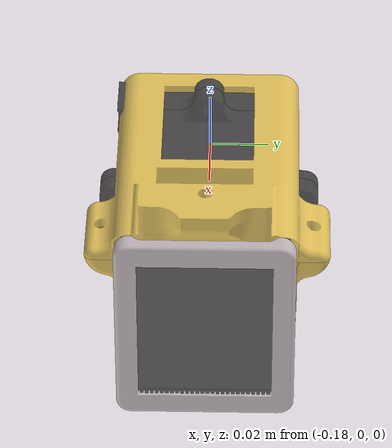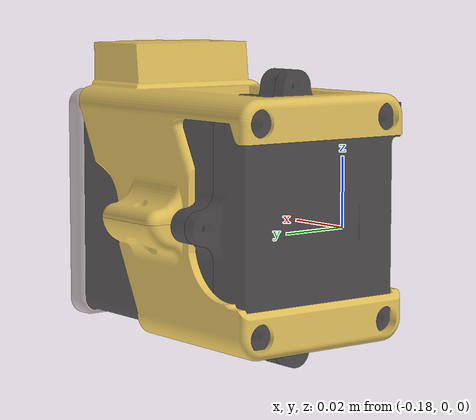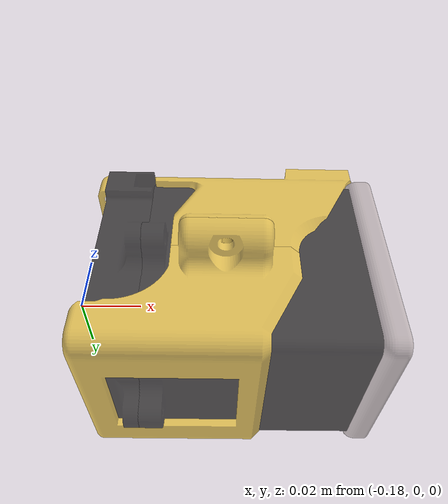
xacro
<?xml version="1.0"?>
<robot name="nusense_case_test" xmlns:xacro="http://www.ros.org/wiki/xacro">

  <!-- bring in your macro -->
  <xacro:include filename="$(find NUSENSE_description)/urdf/nusense_case.xacro"/>

  <link name="world"/>

  <!-- instantiate your case link -->
  <xacro:nusense_case prefix="" link_name="nusense_case" scale="0.001 0.001 0.001"/>

  <!-- mount it to world (tune this) -->
  <joint name="world_to_nusense_case" type="fixed">
    <parent link="world"/>
    <child link="nusense_case"/>
    <origin xyz="0 0 0" rpy="0 0 0"/>
  </joint>

</robot>

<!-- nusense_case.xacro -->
<robot xmlns:xacro="http://www.ros.org/wiki/xacro">

  <!-- Optional: keep materials if you already have them -->
  <xacro:include filename="$(find NUSENSE_description)/urdf/materials.xacro" />

  <!-- Rigid case macro: one link, multiple visual meshes -->
  <xacro:macro name="nusense_case" params="
      prefix
      link_name:='nusense_case'
      scale:='0.001 0.001 0.001'
    ">

    <link name="${prefix}${link_name}">
      <!-- INERTIAL: approximate as box -->
      <inertial>
        <origin xyz="-0.16482238182188297 -0.0002961685858999756 0.00025788233645894493" rpy="0 0 0"/>
        <mass value="0.03501172063719372"/>
        <inertia ixx="2.3e-05" iyy="1.5e-05" izz="1e-05" ixy="0" ixz="0" iyz="0"/>
      </inertial>

      <!-- VISUALS: -->

      <visual>
        <origin xyz="0 0 0" rpy="0 0 0"/>
        <geometry>
          <mesh filename="package://NUSENSE_description/meshes/base_link.stl" scale="${scale}"/>
        </geometry>
        <material name="blackish"/>
      </visual>

      <visual>
        <origin xyz="0 0 0" rpy="0 0 0"/>
        <geometry>
          <mesh filename="package://NUSENSE_description/meshes/TOP_ROBOTIQ_v1_1.stl" scale="${scale}"/>
        </geometry>
        <material name="mount_yellow"/>
      </visual>

      <visual>
        <origin xyz="0 0 0" rpy="0 0 0"/>
        <geometry>
          <mesh filename="package://NUSENSE_description/meshes/BOTTOM_ROBOTIQ_v1_1.stl" scale="${scale}"/>
        </geometry>
        <material name="mount_yellow"/>
      </visual>

      <visual>
        <origin xyz="0 0 0" rpy="0 0 0"/>
        <geometry>
          <mesh filename="package://NUSENSE_description/meshes/Shell_LID_1.stl" scale="${scale}"/>
        </geometry>
        <material name="blackish"/>
      </visual>

      <visual>
        <origin xyz="0 0 0" rpy="0 0 0"/>
        <geometry>
          <mesh filename="package://NUSENSE_description/meshes/Cap_LID_1.stl" scale="${scale}"/>
        </geometry>
        <material name="grayish"/>
      </visual>

      <!-- COLLISION:
           Start simple: use ONE mesh (or later swap for a simplified convex hull / box). -->
      <collision>
        <origin xyz="0 0 0" rpy="0 0 0"/>
        <geometry>
          <mesh filename="package://NUSENSE_description/meshes/TOP_ROBOTIQ_v1_1.stl" scale="${scale}"/>
        </geometry>
      </collision>

    </link>

  </xacro:macro>

</robot>

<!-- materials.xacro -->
<robot name="NUSENSE" xmlns:xacro="http://www.ros.org/wiki/xacro" >

<material name="mount_yellow">
  <color rgba="0.92549 0.76863 0.25098 0.8"/>
</material>

<material name="blackish">
  <color rgba="0.05882 0.05882 0.05098 0.71"/>
</material>

<material name="grayish">
  <color rgba="0.73725 0.69020 0.69020 0.71"/>
</material>

</robot>
